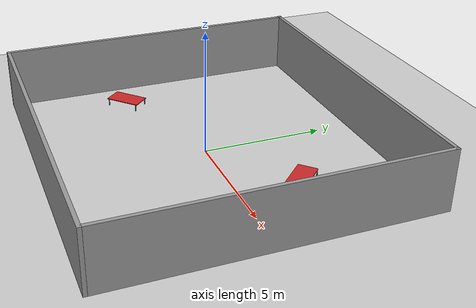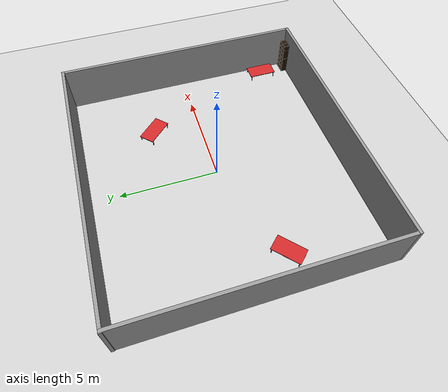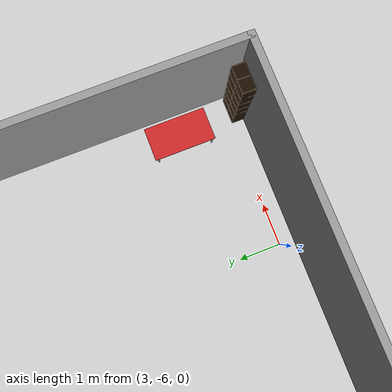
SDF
<sdf version="1.6">
 <world name="Own Room">
  <model name="ground_plane">
   <static>1</static>
   <link name="link">
    <collision name="collision">
     <geometry><plane><normal>0 0 1</normal><size>100 100</size></plane></geometry>
     <surface>
      <contact><collide_bitmask>65535</collide_bitmask></contact>
      <friction><ode><mu>100</mu><mu2>50</mu2></ode></friction>
     </surface>
    </collision>
    <visual name="visual">
     <cast_shadows>0</cast_shadows>
     <geometry><plane><normal>0 0 1</normal><size>100 100</size></plane></geometry>
     <material>
      <script><uri>file://media/materials/scripts/gazebo.material</uri><name>Gazebo/Grey</name></script>
     </material>
    </visual>
   </link>
  </model>
  <model name="Room">
   <pose>-0.022602 0.001659 0 0 -0 0</pose>
   <link name="Wall_1">
    <collision name="Wall_1_Collision">
     <geometry><box><size>13 0.15 2.5</size></box></geometry>
     <pose>0 0 1.25 0 -0 0</pose>
    </collision>
    <visual name="Wall_1_Visual">
     <pose>0 0 1.25 0 -0 0</pose>
     <geometry><box><size>13 0.15 2.5</size></box></geometry>
     <material>
      <script><uri>file://media/materials/scripts/gazebo.material</uri><name>Gazebo/Grey</name></script>
      <ambient>0.333333 0.341176 0.32549 1</ambient>
     </material>
     <meta><layer>0</layer></meta>
    </visual>
    <pose>-6.88982 -0 0 0 -0 1.5708</pose>
   </link>
   <link name="Wall_2">
    <collision name="Wall_2_Collision">
     <geometry><box><size>14 0.15 2.5</size></box></geometry>
     <pose>0 0 1.25 0 -0 0</pose>
    </collision>
    <visual name="Wall_2_Visual">
     <pose>0 0 1.25 0 -0 0</pose>
     <geometry><box><size>14 0.15 2.5</size></box></geometry>
     <material>
      <script><uri>file://media/materials/scripts/gazebo.material</uri><name>Gazebo/Grey</name></script>
      <ambient>0.333333 0.341176 0.32549 1</ambient>
     </material>
     <meta><layer>0</layer></meta>
    </visual>
    <pose>-0 6.425 0 0 -0 0</pose>
   </link>
   <link name="Wall_4">
    <collision name="Wall_4_Collision">
     <geometry><box><size>13 0.15 2.5</size></box></geometry>
     <pose>0 0 1.25 0 -0 0</pose>
    </collision>
    <visual name="Wall_4_Visual">
     <pose>0 0 1.25 0 -0 0</pose>
     <geometry><box><size>13 0.15 2.5</size></box></geometry>
     <material>
      <script><uri>file://media/materials/scripts/gazebo.material</uri><name>Gazebo/Grey</name></script>
      <ambient>0.333333 0.341176 0.32549 1</ambient>
     </material>
     <meta><layer>0</layer></meta>
    </visual>
    <pose>6.925 -0 0 0 -0 -1.5708</pose>
   </link>
   <link name="Wall_5">
    <collision name="Wall_5_Collision">
     <geometry><box><size>13.9648 0.15 2.5</size></box></geometry>
     <pose>0 0 1.25 0 -0 0</pose>
    </collision>
    <visual name="Wall_5_Visual">
     <pose>0 0 1.25 0 -0 0</pose>
     <geometry><box><size>13.9648 0.15 2.5</size></box></geometry>
     <material>
      <script><uri>file://media/materials/scripts/gazebo.material</uri><name>Gazebo/Grey</name></script>
      <ambient>0.333333 0.341176 0.32549 1</ambient>
     </material>
     <meta><layer>0</layer></meta>
    </visual>
    <pose>0.017589 -6.425 0 0 -0 3.14159</pose>
   </link>
   <static>1</static>
  </model>
  <model name="table_0">
   <link name="link">
    <inertial>
     <mass>1</mass>
     <inertia><ixx>1</ixx><ixy>0</ixy><ixz>0</ixz><iyy>1</iyy><iyz>0</iyz><izz>1</izz></inertia>
    </inertial>
    <visual name="front_right_leg">
     <pose>0.68 -0.38 0.15 0 -0 0</pose>
     <geometry><cylinder><radius>0.02</radius><length>0.3</length></cylinder></geometry>
     <material>
      <script><uri>file://media/materials/scripts/gazebo.material</uri><name>Gazebo/Grey</name></script>
      <shader type="pixel"><normal_map>__default__</normal_map></shader>
      <ambient>0.3 0.3 0.3 1</ambient>
      <diffuse>0.7 0.7 0.7 1</diffuse>
      <specular>0.01 0.01 0.01 1</specular>
      <emissive>0 0 0 1</emissive>
     </material>
    </visual>
    <visual name="back_left_leg">
     <pose>-0.68 0.38 0.15 0 -0 0</pose>
     <geometry><cylinder><radius>0.02</radius><length>0.3</length></cylinder></geometry>
     <material>
      <script><uri>file://media/materials/scripts/gazebo.material</uri><name>Gazebo/Grey</name></script>
      <shader type="pixel"><normal_map>__default__</normal_map></shader>
      <ambient>0.3 0.3 0.3 1</ambient>
      <diffuse>0.7 0.7 0.7 1</diffuse>
      <specular>0.01 0.01 0.01 1</specular>
      <emissive>0 0 0 1</emissive>
     </material>
    </visual>
    <visual name="front_left_leg">
     <pose>0.68 0.38 0.15 0 -0 0</pose>
     <geometry><cylinder><radius>0.02</radius><length>0.3</length></cylinder></geometry>
     <material>
      <script><uri>file://media/materials/scripts/gazebo.material</uri><name>Gazebo/Grey</name></script>
      <shader type="pixel"><normal_map>__default__</normal_map></shader>
      <ambient>0.3 0.3 0.3 1</ambient>
      <diffuse>0.7 0.7 0.7 1</diffuse>
      <specular>0.01 0.01 0.01 1</specular>
      <emissive>0 0 0 1</emissive>
     </material>
    </visual>
    <visual name="visual1">
     <pose>0 0 0.3 0 -0 0</pose>
     <geometry><box><size>1.5 0.8 0.03</size></box></geometry>
     <material>
      <script><uri>file://media/materials/scripts/gazebo.material</uri><name>Gazebo/Red</name></script>
      <shader type="vertex"><normal_map>__default__</normal_map></shader>
      <ambient>1 0 0 1</ambient>
      <diffuse>1 0 0 1</diffuse>
      <specular>0.2 0 0 1</specular>
      <emissive>0 0 0 1</emissive>
      <lighting>1</lighting>
     </material>
    </visual>
    <visual name="back_right_leg">
     <pose>-0.68 -0.38 0.15 0 -0 0</pose>
     <geometry><cylinder><radius>0.02</radius><length>0.3</length></cylinder></geometry>
     <material>
      <script><uri>file://media/materials/scripts/gazebo.material</uri><name>Gazebo/Grey</name></script>
      <shader type="pixel"><normal_map>__default__</normal_map></shader>
      <ambient>0.3 0.3 0.3 1</ambient>
      <diffuse>0.7 0.7 0.7 1</diffuse>
      <specular>0.01 0.01 0.01 1</specular>
      <emissive>0 0 0 1</emissive>
     </material>
    </visual>
    <collision name="front_left_leg">
     <pose>0.68 0.38 0.15 0 -0 0</pose>
     <geometry><cylinder><radius>0.02</radius><length>0.3</length></cylinder></geometry>
     <surface>
      <friction>
       <ode><mu>1</mu><mu2>1</mu2><fdir1>0 0 0</fdir1><slip1>0</slip1><slip2>0</slip2></ode>
       <torsional>
        <coefficient>1</coefficient>
        <patch_radius>0</patch_radius>
        <surface_radius>0</surface_radius>
        <use_patch_radius>1</use_patch_radius>
        <ode><slip>0</slip></ode>
       </torsional>
      </friction>
      <bounce><restitution_coefficient>0</restitution_coefficient><threshold>1e+06</threshold></bounce>
      <contact>
       <collide_without_contact>0</collide_without_contact>
       <collide_without_contact_bitmask>1</collide_without_contact_bitmask>
       <collide_bitmask>1</collide_bitmask>
       <ode>
        <soft_cfm>0</soft_cfm>
        <soft_erp>0.2</soft_erp>
        <kp>1e+13</kp>
        <kd>1</kd>
        <max_vel>0.01</max_vel>
        <min_depth>0</min_depth>
       </ode>
       <bullet>
        <split_impulse>1</split_impulse>
        <split_impulse_penetration_threshold>-0.01</split_impulse_penetration_threshold>
        <soft_cfm>0</soft_cfm>
        <soft_erp>0.2</soft_erp>
        <kp>1e+13</kp>
        <kd>1</kd>
       </bullet>
      </contact>
     </surface>
    </collision>
    <collision name="back_right_leg">
     <pose>-0.68 -0.38 0.15 0 -0 0</pose>
     <geometry><cylinder><radius>0.02</radius><length>0.3</length></cylinder></geometry>
     <surface>
      <friction>
       <ode><mu>1</mu><mu2>1</mu2><fdir1>0 0 0</fdir1><slip1>0</slip1><slip2>0</slip2></ode>
       <torsional>
        <coefficient>1</coefficient>
        <patch_radius>0</patch_radius>
        <surface_radius>0</surface_radius>
        <use_patch_radius>1</use_patch_radius>
        <ode><slip>0</slip></ode>
       </torsional>
      </friction>
      <bounce><restitution_coefficient>0</restitution_coefficient><threshold>1e+06</threshold></bounce>
      <contact>
       <collide_without_contact>0</collide_without_contact>
       <collide_without_contact_bitmask>1</collide_without_contact_bitmask>
       <collide_bitmask>1</collide_bitmask>
       <ode>
        <soft_cfm>0</soft_cfm>
        <soft_erp>0.2</soft_erp>
        <kp>1e+13</kp>
        <kd>1</kd>
        <max_vel>0.01</max_vel>
        <min_depth>0</min_depth>
       </ode>
       <bullet>
        <split_impulse>1</split_impulse>
        <split_impulse_penetration_threshold>-0.01</split_impulse_penetration_threshold>
        <soft_cfm>0</soft_cfm>
        <soft_erp>0.2</soft_erp>
        <kp>1e+13</kp>
        <kd>1</kd>
       </bullet>
      </contact>
     </surface>
    </collision>
    <collision name="back_left_leg">
     <pose>-0.68 0.38 0.15 0 -0 0</pose>
     <geometry><cylinder><radius>0.02</radius><length>0.3</length></cylinder></geometry>
     <surface>
      <friction>
       <ode><mu>1</mu><mu2>1</mu2><fdir1>0 0 0</fdir1><slip1>0</slip1><slip2>0</slip2></ode>
       <torsional>
        <coefficient>1</coefficient>
        <patch_radius>0</patch_radius>
        <surface_radius>0</surface_radius>
        <use_patch_radius>1</use_patch_radius>
        <ode><slip>0</slip></ode>
       </torsional>
      </friction>
      <bounce><restitution_coefficient>0</restitution_coefficient><threshold>1e+06</threshold></bounce>
      <contact>
       <collide_without_contact>0</collide_without_contact>
       <collide_without_contact_bitmask>1</collide_without_contact_bitmask>
       <collide_bitmask>1</collide_bitmask>
       <ode>
        <soft_cfm>0</soft_cfm>
        <soft_erp>0.2</soft_erp>
        <kp>1e+13</kp>
        <kd>1</kd>
        <max_vel>0.01</max_vel>
        <min_depth>0</min_depth>
       </ode>
       <bullet>
        <split_impulse>1</split_impulse>
        <split_impulse_penetration_threshold>-0.01</split_impulse_penetration_threshold>
        <soft_cfm>0</soft_cfm>
        <soft_erp>0.2</soft_erp>
        <kp>1e+13</kp>
        <kd>1</kd>
       </bullet>
      </contact>
     </surface>
    </collision>
    <collision name="surface">
     <pose>0 0 0.3 0 -0 0</pose>
     <geometry><box><size>1.5 0.8 0.03</size></box></geometry>
     <surface>
      <friction>
       <ode><mu>0.6</mu><mu2>0.6</mu2><fdir1>0 0 0</fdir1><slip1>0</slip1><slip2>0</slip2></ode>
       <torsional>
        <coefficient>1</coefficient>
        <patch_radius>0</patch_radius>
        <surface_radius>0</surface_radius>
        <use_patch_radius>1</use_patch_radius>
        <ode><slip>0</slip></ode>
       </torsional>
      </friction>
      <bounce><restitution_coefficient>0</restitution_coefficient><threshold>1e+06</threshold></bounce>
      <contact>
       <collide_without_contact>0</collide_without_contact>
       <collide_without_contact_bitmask>1</collide_without_contact_bitmask>
       <collide_bitmask>1</collide_bitmask>
       <ode>
        <soft_cfm>0</soft_cfm>
        <soft_erp>0.2</soft_erp>
        <kp>1e+13</kp>
        <kd>1</kd>
        <max_vel>0.01</max_vel>
        <min_depth>0</min_depth>
       </ode>
       <bullet>
        <split_impulse>1</split_impulse>
        <split_impulse_penetration_threshold>-0.01</split_impulse_penetration_threshold>
        <soft_cfm>0</soft_cfm>
        <soft_erp>0.2</soft_erp>
        <kp>1e+13</kp>
        <kd>1</kd>
       </bullet>
      </contact>
     </surface>
    </collision>
    <collision name="front_right_leg">
     <pose>0.68 -0.38 0.15 0 -0 0</pose>
     <geometry><cylinder><radius>0.02</radius><length>0.3</length></cylinder></geometry>
     <surface>
      <friction>
       <ode><mu>1</mu><mu2>1</mu2><fdir1>0 0 0</fdir1><slip1>0</slip1><slip2>0</slip2></ode>
       <torsional>
        <coefficient>1</coefficient>
        <patch_radius>0</patch_radius>
        <surface_radius>0</surface_radius>
        <use_patch_radius>1</use_patch_radius>
        <ode><slip>0</slip></ode>
       </torsional>
      </friction>
      <bounce><restitution_coefficient>0</restitution_coefficient><threshold>1e+06</threshold></bounce>
      <contact>
       <collide_without_contact>0</collide_without_contact>
       <collide_without_contact_bitmask>1</collide_without_contact_bitmask>
       <collide_bitmask>1</collide_bitmask>
       <ode>
        <soft_cfm>0</soft_cfm>
        <soft_erp>0.2</soft_erp>
        <kp>1e+13</kp>
        <kd>1</kd>
        <max_vel>0.01</max_vel>
        <min_depth>0</min_depth>
       </ode>
       <bullet>
        <split_impulse>1</split_impulse>
        <split_impulse_penetration_threshold>-0.01</split_impulse_penetration_threshold>
        <soft_cfm>0</soft_cfm>
        <soft_erp>0.2</soft_erp>
        <kp>1e+13</kp>
        <kd>1</kd>
       </bullet>
      </contact>
     </surface>
    </collision>
   </link>
   <static>1</static>
   <pose>6.26711 -4.72705 0 0 0 -1.56938</pose>
  </model>
  <model name="table_1">
   <link name="link">
    <inertial>
     <mass>1</mass>
     <inertia><ixx>1</ixx><ixy>0</ixy><ixz>0</ixz><iyy>1</iyy><iyz>0</iyz><izz>1</izz></inertia>
    </inertial>
    <visual name="front_right_leg">
     <pose>0.68 -0.38 0.15 0 -0 0</pose>
     <geometry><cylinder><radius>0.02</radius><length>0.3</length></cylinder></geometry>
     <material>
      <script><uri>file://media/materials/scripts/gazebo.material</uri><name>Gazebo/Grey</name></script>
      <shader type="pixel"><normal_map>__default__</normal_map></shader>
      <ambient>0.3 0.3 0.3 1</ambient>
      <diffuse>0.7 0.7 0.7 1</diffuse>
      <specular>0.01 0.01 0.01 1</specular>
      <emissive>0 0 0 1</emissive>
     </material>
    </visual>
    <visual name="back_left_leg">
     <pose>-0.68 0.38 0.15 0 -0 0</pose>
     <geometry><cylinder><radius>0.02</radius><length>0.3</length></cylinder></geometry>
     <material>
      <script><uri>file://media/materials/scripts/gazebo.material</uri><name>Gazebo/Grey</name></script>
      <shader type="pixel"><normal_map>__default__</normal_map></shader>
      <ambient>0.3 0.3 0.3 1</ambient>
      <diffuse>0.7 0.7 0.7 1</diffuse>
      <specular>0.01 0.01 0.01 1</specular>
      <emissive>0 0 0 1</emissive>
     </material>
    </visual>
    <visual name="front_left_leg">
     <pose>0.68 0.38 0.15 0 -0 0</pose>
     <geometry><cylinder><radius>0.02</radius><length>0.3</length></cylinder></geometry>
     <material>
      <script><uri>file://media/materials/scripts/gazebo.material</uri><name>Gazebo/Grey</name></script>
      <shader type="pixel"><normal_map>__default__</normal_map></shader>
      <ambient>0.3 0.3 0.3 1</ambient>
      <diffuse>0.7 0.7 0.7 1</diffuse>
      <specular>0.01 0.01 0.01 1</specular>
      <emissive>0 0 0 1</emissive>
     </material>
    </visual>
    <visual name="visual1">
     <pose>0 0 0.3 0 -0 0</pose>
     <geometry><box><size>1.5 0.8 0.03</size></box></geometry>
     <material>
      <script><uri>file://media/materials/scripts/gazebo.material</uri><name>Gazebo/Red</name></script>
      <shader type="vertex"><normal_map>__default__</normal_map></shader>
      <ambient>1 0 0 1</ambient>
      <diffuse>1 0 0 1</diffuse>
      <specular>0.2 0 0 1</specular>
      <emissive>0 0 0 1</emissive>
      <lighting>1</lighting>
     </material>
    </visual>
    <visual name="back_right_leg">
     <pose>-0.68 -0.38 0.15 0 -0 0</pose>
     <geometry><cylinder><radius>0.02</radius><length>0.3</length></cylinder></geometry>
     <material>
      <script><uri>file://media/materials/scripts/gazebo.material</uri><name>Gazebo/Grey</name></script>
      <shader type="pixel"><normal_map>__default__</normal_map></shader>
      <ambient>0.3 0.3 0.3 1</ambient>
      <diffuse>0.7 0.7 0.7 1</diffuse>
      <specular>0.01 0.01 0.01 1</specular>
      <emissive>0 0 0 1</emissive>
     </material>
    </visual>
    <collision name="front_left_leg">
     <pose>0.68 0.38 0.15 0 -0 0</pose>
     <geometry><cylinder><radius>0.02</radius><length>0.3</length></cylinder></geometry>
     <surface>
      <friction>
       <ode><mu>1</mu><mu2>1</mu2><fdir1>0 0 0</fdir1><slip1>0</slip1><slip2>0</slip2></ode>
       <torsional>
        <coefficient>1</coefficient>
        <patch_radius>0</patch_radius>
        <surface_radius>0</surface_radius>
        <use_patch_radius>1</use_patch_radius>
        <ode><slip>0</slip></ode>
       </torsional>
      </friction>
      <bounce><restitution_coefficient>0</restitution_coefficient><threshold>1e+06</threshold></bounce>
      <contact>
       <collide_without_contact>0</collide_without_contact>
       <collide_without_contact_bitmask>1</collide_without_contact_bitmask>
       <collide_bitmask>1</collide_bitmask>
       <ode>
        <soft_cfm>0</soft_cfm>
        <soft_erp>0.2</soft_erp>
        <kp>1e+13</kp>
        <kd>1</kd>
        <max_vel>0.01</max_vel>
        <min_depth>0</min_depth>
       </ode>
       <bullet>
        <split_impulse>1</split_impulse>
        <split_impulse_penetration_threshold>-0.01</split_impulse_penetration_threshold>
        <soft_cfm>0</soft_cfm>
        <soft_erp>0.2</soft_erp>
        <kp>1e+13</kp>
        <kd>1</kd>
       </bullet>
      </contact>
     </surface>
    </collision>
    <collision name="back_right_leg">
     <pose>-0.68 -0.38 0.15 0 -0 0</pose>
     <geometry><cylinder><radius>0.02</radius><length>0.3</length></cylinder></geometry>
     <surface>
      <friction>
       <ode><mu>1</mu><mu2>1</mu2><fdir1>0 0 0</fdir1><slip1>0</slip1><slip2>0</slip2></ode>
       <torsional>
        <coefficient>1</coefficient>
        <patch_radius>0</patch_radius>
        <surface_radius>0</surface_radius>
        <use_patch_radius>1</use_patch_radius>
        <ode><slip>0</slip></ode>
       </torsional>
      </friction>
      <bounce><restitution_coefficient>0</restitution_coefficient><threshold>1e+06</threshold></bounce>
      <contact>
       <collide_without_contact>0</collide_without_contact>
       <collide_without_contact_bitmask>1</collide_without_contact_bitmask>
       <collide_bitmask>1</collide_bitmask>
       <ode>
        <soft_cfm>0</soft_cfm>
        <soft_erp>0.2</soft_erp>
        <kp>1e+13</kp>
        <kd>1</kd>
        <max_vel>0.01</max_vel>
        <min_depth>0</min_depth>
       </ode>
       <bullet>
        <split_impulse>1</split_impulse>
        <split_impulse_penetration_threshold>-0.01</split_impulse_penetration_threshold>
        <soft_cfm>0</soft_cfm>
        <soft_erp>0.2</soft_erp>
        <kp>1e+13</kp>
        <kd>1</kd>
       </bullet>
      </contact>
     </surface>
    </collision>
    <collision name="back_left_leg">
     <pose>-0.68 0.38 0.15 0 -0 0</pose>
     <geometry><cylinder><radius>0.02</radius><length>0.3</length></cylinder></geometry>
     <surface>
      <friction>
       <ode><mu>1</mu><mu2>1</mu2><fdir1>0 0 0</fdir1><slip1>0</slip1><slip2>0</slip2></ode>
       <torsional>
        <coefficient>1</coefficient>
        <patch_radius>0</patch_radius>
        <surface_radius>0</surface_radius>
        <use_patch_radius>1</use_patch_radius>
        <ode><slip>0</slip></ode>
       </torsional>
      </friction>
      <bounce><restitution_coefficient>0</restitution_coefficient><threshold>1e+06</threshold></bounce>
      <contact>
       <collide_without_contact>0</collide_without_contact>
       <collide_without_contact_bitmask>1</collide_without_contact_bitmask>
       <collide_bitmask>1</collide_bitmask>
       <ode>
        <soft_cfm>0</soft_cfm>
        <soft_erp>0.2</soft_erp>
        <kp>1e+13</kp>
        <kd>1</kd>
        <max_vel>0.01</max_vel>
        <min_depth>0</min_depth>
       </ode>
       <bullet>
        <split_impulse>1</split_impulse>
        <split_impulse_penetration_threshold>-0.01</split_impulse_penetration_threshold>
        <soft_cfm>0</soft_cfm>
        <soft_erp>0.2</soft_erp>
        <kp>1e+13</kp>
        <kd>1</kd>
       </bullet>
      </contact>
     </surface>
    </collision>
    <collision name="surface">
     <pose>0 0 0.3 0 -0 0</pose>
     <geometry><box><size>1.5 0.8 0.03</size></box></geometry>
     <surface>
      <friction>
       <ode><mu>0.6</mu><mu2>0.6</mu2><fdir1>0 0 0</fdir1><slip1>0</slip1><slip2>0</slip2></ode>
       <torsional>
        <coefficient>1</coefficient>
        <patch_radius>0</patch_radius>
        <surface_radius>0</surface_radius>
        <use_patch_radius>1</use_patch_radius>
        <ode><slip>0</slip></ode>
       </torsional>
      </friction>
      <bounce><restitution_coefficient>0</restitution_coefficient><threshold>1e+06</threshold></bounce>
      <contact>
       <collide_without_contact>0</collide_without_contact>
       <collide_without_contact_bitmask>1</collide_without_contact_bitmask>
       <collide_bitmask>1</collide_bitmask>
       <ode>
        <soft_cfm>0</soft_cfm>
        <soft_erp>0.2</soft_erp>
        <kp>1e+13</kp>
        <kd>1</kd>
        <max_vel>0.01</max_vel>
        <min_depth>0</min_depth>
       </ode>
       <bullet>
        <split_impulse>1</split_impulse>
        <split_impulse_penetration_threshold>-0.01</split_impulse_penetration_threshold>
        <soft_cfm>0</soft_cfm>
        <soft_erp>0.2</soft_erp>
        <kp>1e+13</kp>
        <kd>1</kd>
       </bullet>
      </contact>
     </surface>
    </collision>
    <collision name="front_right_leg">
     <pose>0.68 -0.38 0.15 0 -0 0</pose>
     <geometry><cylinder><radius>0.02</radius><length>0.3</length></cylinder></geometry>
     <surface>
      <friction>
       <ode><mu>1</mu><mu2>1</mu2><fdir1>0 0 0</fdir1><slip1>0</slip1><slip2>0</slip2></ode>
       <torsional>
        <coefficient>1</coefficient>
        <patch_radius>0</patch_radius>
        <surface_radius>0</surface_radius>
        <use_patch_radius>1</use_patch_radius>
        <ode><slip>0</slip></ode>
       </torsional>
      </friction>
      <bounce><restitution_coefficient>0</restitution_coefficient><threshold>1e+06</threshold></bounce>
      <contact>
       <collide_without_contact>0</collide_without_contact>
       <collide_without_contact_bitmask>1</collide_without_contact_bitmask>
       <collide_bitmask>1</collide_bitmask>
       <ode>
        <soft_cfm>0</soft_cfm>
        <soft_erp>0.2</soft_erp>
        <kp>1e+13</kp>
        <kd>1</kd>
        <max_vel>0.01</max_vel>
        <min_depth>0</min_depth>
       </ode>
       <bullet>
        <split_impulse>1</split_impulse>
        <split_impulse_penetration_threshold>-0.01</split_impulse_penetration_threshold>
        <soft_cfm>0</soft_cfm>
        <soft_erp>0.2</soft_erp>
        <kp>1e+13</kp>
        <kd>1</kd>
       </bullet>
      </contact>
     </surface>
    </collision>
   </link>
   <static>1</static>
   <pose>3.47543 2.47814 0 0 0 -0.802588</pose>
  </model>
  <model name="table_2">
   <link name="link">
    <inertial>
     <mass>1</mass>
     <inertia><ixx>1</ixx><ixy>0</ixy><ixz>0</ixz><iyy>1</iyy><iyz>0</iyz><izz>1</izz></inertia>
    </inertial>
    <visual name="front_right_leg">
     <pose>0.68 -0.38 0.15 0 -0 0</pose>
     <geometry><cylinder><radius>0.02</radius><length>0.3</length></cylinder></geometry>
     <material>
      <script><uri>file://media/materials/scripts/gazebo.material</uri><name>Gazebo/Grey</name></script>
      <shader type="pixel"><normal_map>__default__</normal_map></shader>
      <ambient>0.3 0.3 0.3 1</ambient>
      <diffuse>0.7 0.7 0.7 1</diffuse>
      <specular>0.01 0.01 0.01 1</specular>
      <emissive>0 0 0 1</emissive>
     </material>
    </visual>
    <visual name="back_left_leg">
     <pose>-0.68 0.38 0.15 0 -0 0</pose>
     <geometry><cylinder><radius>0.02</radius><length>0.3</length></cylinder></geometry>
     <material>
      <script><uri>file://media/materials/scripts/gazebo.material</uri><name>Gazebo/Grey</name></script>
      <shader type="pixel"><normal_map>__default__</normal_map></shader>
      <ambient>0.3 0.3 0.3 1</ambient>
      <diffuse>0.7 0.7 0.7 1</diffuse>
      <specular>0.01 0.01 0.01 1</specular>
      <emissive>0 0 0 1</emissive>
     </material>
    </visual>
    <visual name="front_left_leg">
     <pose>0.68 0.38 0.15 0 -0 0</pose>
     <geometry><cylinder><radius>0.02</radius><length>0.3</length></cylinder></geometry>
     <material>
      <script><uri>file://media/materials/scripts/gazebo.material</uri><name>Gazebo/Grey</name></script>
      <shader type="pixel"><normal_map>__default__</normal_map></shader>
      <ambient>0.3 0.3 0.3 1</ambient>
      <diffuse>0.7 0.7 0.7 1</diffuse>
      <specular>0.01 0.01 0.01 1</specular>
      <emissive>0 0 0 1</emissive>
     </material>
    </visual>
    <visual name="visual1">
     <pose>0 0 0.3 0 -0 0</pose>
     <geometry><box><size>1.5 0.8 0.03</size></box></geometry>
     <material>
      <script><uri>file://media/materials/scripts/gazebo.material</uri><name>Gazebo/Red</name></script>
      <shader type="vertex"><normal_map>__default__</normal_map></shader>
      <ambient>1 0 0 1</ambient>
      <diffuse>1 0 0 1</diffuse>
      <specular>0.2 0 0 1</specular>
      <emissive>0 0 0 1</emissive>
      <lighting>1</lighting>
     </material>
    </visual>
    <visual name="back_right_leg">
     <pose>-0.68 -0.38 0.15 0 -0 0</pose>
     <geometry><cylinder><radius>0.02</radius><length>0.3</length></cylinder></geometry>
     <material>
      <script><uri>file://media/materials/scripts/gazebo.material</uri><name>Gazebo/Grey</name></script>
      <shader type="pixel"><normal_map>__default__</normal_map></shader>
      <ambient>0.3 0.3 0.3 1</ambient>
      <diffuse>0.7 0.7 0.7 1</diffuse>
      <specular>0.01 0.01 0.01 1</specular>
      <emissive>0 0 0 1</emissive>
     </material>
    </visual>
    <collision name="front_left_leg">
     <pose>0.68 0.38 0.15 0 -0 0</pose>
     <geometry><cylinder><radius>0.02</radius><length>0.3</length></cylinder></geometry>
     <surface>
      <friction>
       <ode><mu>1</mu><mu2>1</mu2><fdir1>0 0 0</fdir1><slip1>0</slip1><slip2>0</slip2></ode>
       <torsional>
        <coefficient>1</coefficient>
        <patch_radius>0</patch_radius>
        <surface_radius>0</surface_radius>
        <use_patch_radius>1</use_patch_radius>
        <ode><slip>0</slip></ode>
       </torsional>
      </friction>
      <bounce><restitution_coefficient>0</restitution_coefficient><threshold>1e+06</threshold></bounce>
      <contact>
       <collide_without_contact>0</collide_without_contact>
       <collide_without_contact_bitmask>1</collide_without_contact_bitmask>
       <collide_bitmask>1</collide_bitmask>
       <ode>
        <soft_cfm>0</soft_cfm>
        <soft_erp>0.2</soft_erp>
        <kp>1e+13</kp>
        <kd>1</kd>
        <max_vel>0.01</max_vel>
        <min_depth>0</min_depth>
       </ode>
       <bullet>
        <split_impulse>1</split_impulse>
        <split_impulse_penetration_threshold>-0.01</split_impulse_penetration_threshold>
        <soft_cfm>0</soft_cfm>
        <soft_erp>0.2</soft_erp>
        <kp>1e+13</kp>
        <kd>1</kd>
       </bullet>
      </contact>
     </surface>
    </collision>
    <collision name="back_right_leg">
     <pose>-0.68 -0.38 0.15 0 -0 0</pose>
     <geometry><cylinder><radius>0.02</radius><length>0.3</length></cylinder></geometry>
     <surface>
      <friction>
       <ode><mu>1</mu><mu2>1</mu2><fdir1>0 0 0</fdir1><slip1>0</slip1><slip2>0</slip2></ode>
       <torsional>
        <coefficient>1</coefficient>
        <patch_radius>0</patch_radius>
        <surface_radius>0</surface_radius>
        <use_patch_radius>1</use_patch_radius>
        <ode><slip>0</slip></ode>
       </torsional>
      </friction>
      <bounce><restitution_coefficient>0</restitution_coefficient><threshold>1e+06</threshold></bounce>
      <contact>
       <collide_without_contact>0</collide_without_contact>
       <collide_without_contact_bitmask>1</collide_without_contact_bitmask>
       <collide_bitmask>1</collide_bitmask>
       <ode>
        <soft_cfm>0</soft_cfm>
        <soft_erp>0.2</soft_erp>
        <kp>1e+13</kp>
        <kd>1</kd>
        <max_vel>0.01</max_vel>
        <min_depth>0</min_depth>
       </ode>
       <bullet>
        <split_impulse>1</split_impulse>
        <split_impulse_penetration_threshold>-0.01</split_impulse_penetration_threshold>
        <soft_cfm>0</soft_cfm>
        <soft_erp>0.2</soft_erp>
        <kp>1e+13</kp>
        <kd>1</kd>
       </bullet>
      </contact>
     </surface>
    </collision>
    <collision name="back_left_leg">
     <pose>-0.68 0.38 0.15 0 -0 0</pose>
     <geometry><cylinder><radius>0.02</radius><length>0.3</length></cylinder></geometry>
     <surface>
      <friction>
       <ode><mu>1</mu><mu2>1</mu2><fdir1>0 0 0</fdir1><slip1>0</slip1><slip2>0</slip2></ode>
       <torsional>
        <coefficient>1</coefficient>
        <patch_radius>0</patch_radius>
        <surface_radius>0</surface_radius>
        <use_patch_radius>1</use_patch_radius>
        <ode><slip>0</slip></ode>
       </torsional>
      </friction>
      <bounce><restitution_coefficient>0</restitution_coefficient><threshold>1e+06</threshold></bounce>
      <contact>
       <collide_without_contact>0</collide_without_contact>
       <collide_without_contact_bitmask>1</collide_without_contact_bitmask>
       <collide_bitmask>1</collide_bitmask>
       <ode>
        <soft_cfm>0</soft_cfm>
        <soft_erp>0.2</soft_erp>
        <kp>1e+13</kp>
        <kd>1</kd>
        <max_vel>0.01</max_vel>
        <min_depth>0</min_depth>
       </ode>
       <bullet>
        <split_impulse>1</split_impulse>
        <split_impulse_penetration_threshold>-0.01</split_impulse_penetration_threshold>
        <soft_cfm>0</soft_cfm>
        <soft_erp>0.2</soft_erp>
        <kp>1e+13</kp>
        <kd>1</kd>
       </bullet>
      </contact>
     </surface>
    </collision>
    <collision name="surface">
     <pose>0 0 0.3 0 -0 0</pose>
     <geometry><box><size>1.5 0.8 0.03</size></box></geometry>
     <surface>
      <friction>
       <ode><mu>0.6</mu><mu2>0.6</mu2><fdir1>0 0 0</fdir1><slip1>0</slip1><slip2>0</slip2></ode>
       <torsional>
        <coefficient>1</coefficient>
        <patch_radius>0</patch_radius>
        <surface_radius>0</surface_radius>
        <use_patch_radius>1</use_patch_radius>
        <ode><slip>0</slip></ode>
       </torsional>
      </friction>
      <bounce><restitution_coefficient>0</restitution_coefficient><threshold>1e+06</threshold></bounce>
      <contact>
       <collide_without_contact>0</collide_without_contact>
       <collide_without_contact_bitmask>1</collide_without_contact_bitmask>
       <collide_bitmask>1</collide_bitmask>
       <ode>
        <soft_cfm>0</soft_cfm>
        <soft_erp>0.2</soft_erp>
        <kp>1e+13</kp>
        <kd>1</kd>
        <max_vel>0.01</max_vel>
        <min_depth>0</min_depth>
       </ode>
       <bullet>
        <split_impulse>1</split_impulse>
        <split_impulse_penetration_threshold>-0.01</split_impulse_penetration_threshold>
        <soft_cfm>0</soft_cfm>
        <soft_erp>0.2</soft_erp>
        <kp>1e+13</kp>
        <kd>1</kd>
       </bullet>
      </contact>
     </surface>
    </collision>
    <collision name="front_right_leg">
     <pose>0.68 -0.38 0.15 0 -0 0</pose>
     <geometry><cylinder><radius>0.02</radius><length>0.3</length></cylinder></geometry>
     <surface>
      <friction>
       <ode><mu>1</mu><mu2>1</mu2><fdir1>0 0 0</fdir1><slip1>0</slip1><slip2>0</slip2></ode>
       <torsional>
        <coefficient>1</coefficient>
        <patch_radius>0</patch_radius>
        <surface_radius>0</surface_radius>
        <use_patch_radius>1</use_patch_radius>
        <ode><slip>0</slip></ode>
       </torsional>
      </friction>
      <bounce><restitution_coefficient>0</restitution_coefficient><threshold>1e+06</threshold></bounce>
      <contact>
       <collide_without_contact>0</collide_without_contact>
       <collide_without_contact_bitmask>1</collide_without_contact_bitmask>
       <collide_bitmask>1</collide_bitmask>
       <ode>
        <soft_cfm>0</soft_cfm>
        <soft_erp>0.2</soft_erp>
        <kp>1e+13</kp>
        <kd>1</kd>
        <max_vel>0.01</max_vel>
        <min_depth>0</min_depth>
       </ode>
       <bullet>
        <split_impulse>1</split_impulse>
        <split_impulse_penetration_threshold>-0.01</split_impulse_penetration_threshold>
        <soft_cfm>0</soft_cfm>
        <soft_erp>0.2</soft_erp>
        <kp>1e+13</kp>
        <kd>1</kd>
       </bullet>
      </contact>
     </surface>
    </collision>
   </link>
   <static>1</static>
   <pose>-5.17868 -1.76031 0 0 -0 0.74411</pose>
  </model>
  <model name="6_Cube_StorageE">
   <link name="Wall_0">
    <pose>0 0 0.01 0 -0 0</pose>
    <inertial>
     <mass>1.6201</mass>
     <inertia><ixx>0.0119</ixx><iyy>0.0631</iyy><izz>0.0513</izz><ixy>0</ixy><ixz>0</ixz><iyz>0</iyz></inertia>
    </inertial>
    <collision name="Wall_0_Collision"><geometry><box><size>0.616 0.296 0.02</size></box></geometry></collision>
    <visual name="Wall_0_Visual">
     <geometry><box><size>0.616 0.296 0.02</size></box></geometry>
     <material>
      <script><uri>file://media/materials/scripts/gazebo.material</uri><name>Gazebo/Grey</name></script>
      <ambient>0.105882 0.0509804 0 1</ambient>
     </material>
    </visual>
   </link>
   <joint name="0_2" type="fixed">
    <pose>-0.308 0 0 0 -0 0</pose>
    <parent>Wall_2</parent>
    <child>Wall_0</child>
    <axis>
     <xyz>1 0 0</xyz>
     <use_parent_model_frame>0</use_parent_model_frame>
     <limit><lower>-1e+16</lower><upper>1e+16</upper></limit>
    </axis>
   </joint>
   <joint name="0_12" type="fixed">
    <parent>Wall_12</parent>
    <child>Wall_0</child>
    <axis>
     <xyz>0 0 1</xyz>
     <use_parent_model_frame>0</use_parent_model_frame>
     <limit><lower>-1e+16</lower><upper>1e+16</upper></limit>
    </axis>
   </joint>
   <joint name="0_4" type="fixed">
    <pose>0.308 0 0 0 -0 0</pose>
    <parent>Wall_4</parent>
    <child>Wall_0</child>
    <axis>
     <xyz>1 0 0</xyz>
     <use_parent_model_frame>0</use_parent_model_frame>
     <limit><lower>-1e+16</lower><upper>1e+16</upper></limit>
    </axis>
   </joint>
   <link name="Wall_10">
    <pose>0 0 0.61 0 -0 0</pose>
    <inertial>
     <mass>1.6201</mass>
     <inertia><ixx>0.0119</ixx><iyy>0.0631</iyy><izz>0.0513</izz><ixy>0</ixy><ixz>0</ixz><iyz>0</iyz></inertia>
    </inertial>
    <collision name="Wall_10_Collision"><geometry><box><size>0.616 0.296 0.02</size></box></geometry></collision>
    <visual name="Wall_10_Visual">
     <geometry><box><size>0.616 0.296 0.02</size></box></geometry>
     <material>
      <script><uri>file://media/materials/scripts/gazebo.material</uri><name>Gazebo/Grey</name></script>
      <ambient>0.105882 0.0509804 0 1</ambient>
     </material>
    </visual>
   </link>
   <joint name="10_2" type="fixed">
    <pose>-0.308 0 0 0 -0 0</pose>
    <parent>Wall_2</parent>
    <child>Wall_10</child>
    <axis>
     <xyz>1 0 0</xyz>
     <use_parent_model_frame>0</use_parent_model_frame>
     <limit><lower>-1e+16</lower><upper>1e+16</upper></limit>
    </axis>
   </joint>
   <joint name="10_12" type="fixed">
    <parent>Wall_12</parent>
    <child>Wall_10</child>
    <axis>
     <xyz>0 0 1</xyz>
     <use_parent_model_frame>0</use_parent_model_frame>
     <limit><lower>-1e+16</lower><upper>1e+16</upper></limit>
    </axis>
   </joint>
   <joint name="10_4" type="fixed">
    <pose>0.308 0 0 0 -0 0</pose>
    <parent>Wall_4</parent>
    <child>Wall_10</child>
    <axis>
     <xyz>1 0 0</xyz>
     <use_parent_model_frame>0</use_parent_model_frame>
     <limit><lower>-1e+16</lower><upper>1e+16</upper></limit>
    </axis>
   </joint>
   <link name="Wall_12">
    <pose>0 0 0.4575 0 -0 0</pose>
    <inertial>
     <mass>2.4065</mass>
     <inertia><ixx>0.0177</ixx><iyy>0.1855</iyy><izz>0.168</izz><ixy>0</ixy><ixz>0</ixz><iyz>0</iyz></inertia>
    </inertial>
    <collision name="Wall_12_Collision"><geometry><box><size>0.02 0.296 0.915</size></box></geometry></collision>
    <visual name="Wall_12_Visual">
     <geometry><box><size>0.02 0.296 0.915</size></box></geometry>
     <material>
      <script><uri>file://media/materials/scripts/gazebo.material</uri><name>Gazebo/Grey</name></script>
      <ambient>0.105882 0.0509804 0 1</ambient>
     </material>
    </visual>
   </link>
   <link name="Wall_2">
    <pose>-0.298 0 0.4575 0 -0 0</pose>
    <inertial>
     <mass>2.4065</mass>
     <inertia><ixx>0.0177</ixx><iyy>0.1855</iyy><izz>0.168</izz><ixy>0</ixy><ixz>0</ixz><iyz>0</iyz></inertia>
    </inertial>
    <collision name="Wall_2_Collision"><geometry><box><size>0.02 0.296 0.915</size></box></geometry></collision>
    <visual name="Wall_2_Visual">
     <geometry><box><size>0.02 0.296 0.915</size></box></geometry>
     <material>
      <script><uri>file://media/materials/scripts/gazebo.material</uri><name>Gazebo/Grey</name></script>
      <ambient>0.105882 0.0509804 0 1</ambient>
     </material>
    </visual>
   </link>
   <link name="Wall_4">
    <pose>0.298 0 0.4575 0 -0 0</pose>
    <inertial>
     <mass>2.4065</mass>
     <inertia><ixx>0.0177</ixx><iyy>0.1855</iyy><izz>0.168</izz><ixy>0</ixy><ixz>0</ixz><iyz>0</iyz></inertia>
    </inertial>
    <collision name="Wall_4_Collision"><geometry><box><size>0.02 0.296 0.915</size></box></geometry></collision>
    <visual name="Wall_4_Visual">
     <geometry><box><size>0.02 0.296 0.915</size></box></geometry>
     <material>
      <script><uri>file://media/materials/scripts/gazebo.material</uri><name>Gazebo/Grey</name></script>
      <ambient>0.105882 0.0509804 0 1</ambient>
     </material>
    </visual>
   </link>
   <link name="Wall_6">
    <pose>0 0 0.905 0 -0 0</pose>
    <inertial>
     <mass>1.6201</mass>
     <inertia><ixx>0.0119</ixx><iyy>0.0631</iyy><izz>0.0513</izz><ixy>0</ixy><ixz>0</ixz><iyz>0</iyz></inertia>
    </inertial>
    <collision name="Wall_6_Collision"><geometry><box><size>0.616 0.296 0.02</size></box></geometry></collision>
    <visual name="Wall_6_Visual">
     <geometry><box><size>0.616 0.296 0.02</size></box></geometry>
     <material>
      <script><uri>file://media/materials/scripts/gazebo.material</uri><name>Gazebo/Grey</name></script>
      <ambient>0.105882 0.0509804 0 1</ambient>
     </material>
    </visual>
   </link>
   <joint name="6_2" type="fixed">
    <pose>-0.308 0 0 0 -0 0</pose>
    <parent>Wall_2</parent>
    <child>Wall_6</child>
    <axis>
     <xyz>2 0 0</xyz>
     <use_parent_model_frame>0</use_parent_model_frame>
     <limit><lower>-1e+16</lower><upper>1e+16</upper></limit>
    </axis>
   </joint>
   <joint name="6_12" type="fixed">
    <parent>Wall_12</parent>
    <child>Wall_6</child>
    <axis>
     <xyz>0 0 1</xyz>
     <use_parent_model_frame>0</use_parent_model_frame>
     <limit><lower>-1e+16</lower><upper>1e+16</upper></limit>
    </axis>
   </joint>
   <joint name="6_4" type="fixed">
    <pose>0.308 0 0 0 -0 0</pose>
    <parent>Wall_4</parent>
    <child>Wall_6</child>
    <axis>
     <xyz>1 0 0</xyz>
     <use_parent_model_frame>0</use_parent_model_frame>
     <limit><lower>-1e+16</lower><upper>1e+16</upper></limit>
    </axis>
   </joint>
   <link name="Wall_8">
    <pose>0 0 0.305 0 -0 0</pose>
    <inertial>
     <mass>1.6201</mass>
     <inertia><ixx>0.0119</ixx><iyy>0.0631</iyy><izz>0.0513</izz><ixy>0</ixy><ixz>0</ixz><iyz>0</iyz></inertia>
    </inertial>
    <collision name="Wall_8_Collision"><geometry><box><size>0.616 0.296 0.02</size></box></geometry></collision>
    <visual name="Wall_8_Visual">
     <geometry><box><size>0.616 0.296 0.02</size></box></geometry>
     <material>
      <script><uri>file://media/materials/scripts/gazebo.material</uri><name>Gazebo/Grey</name></script>
      <ambient>0.105882 0.0509804 0 1</ambient>
     </material>
    </visual>
   </link>
   <joint name="8_2" type="fixed">
    <pose>-0.308 0 0 0 -0 0</pose>
    <parent>Wall_2</parent>
    <child>Wall_8</child>
    <axis>
     <xyz>1 0 0</xyz>
     <use_parent_model_frame>0</use_parent_model_frame>
     <limit><lower>-1e+16</lower><upper>1e+16</upper></limit>
    </axis>
   </joint>
   <joint name="8_12" type="fixed">
    <parent>Wall_12</parent>
    <child>Wall_8</child>
    <axis>
     <xyz>0 0 1</xyz>
     <use_parent_model_frame>0</use_parent_model_frame>
     <limit><lower>-1e+16</lower><upper>1e+16</upper></limit>
    </axis>
   </joint>
   <joint name="8_4" type="fixed">
    <pose>0.308 0 0 0 -0 0</pose>
    <parent>Wall_4</parent>
    <child>Wall_8</child>
    <axis>
     <xyz>1 0 0</xyz>
     <use_parent_model_frame>0</use_parent_model_frame>
     <limit><lower>-1e+16</lower><upper>1e+16</upper></limit>
    </axis>
   </joint>
   <static>1</static>
   <pose>6.45254 -6.19874 0 0 -0 0</pose>
  </model>
  <model name="6_Cube_StorageE_clone">
   <link name="Wall_0">
    <pose>0 0 0.01 0 -0 0</pose>
    <inertial>
     <mass>1.6201</mass>
     <inertia><ixx>0.0119</ixx><iyy>0.0631</iyy><izz>0.0513</izz><ixy>0</ixy><ixz>0</ixz><iyz>0</iyz></inertia>
    </inertial>
    <collision name="Wall_0_Collision"><geometry><box><size>0.616 0.296 0.02</size></box></geometry></collision>
    <visual name="Wall_0_Visual">
     <geometry><box><size>0.616 0.296 0.02</size></box></geometry>
     <material>
      <script><uri>file://media/materials/scripts/gazebo.material</uri><name>Gazebo/Grey</name></script>
      <ambient>0.105882 0.0509804 0 1</ambient>
     </material>
    </visual>
   </link>
   <joint name="0_2" type="fixed">
    <pose>-0.308 0 0 0 -0 0</pose>
    <parent>Wall_2</parent>
    <child>Wall_0</child>
    <axis>
     <xyz>1 0 0</xyz>
     <use_parent_model_frame>0</use_parent_model_frame>
     <limit><lower>-1e+16</lower><upper>1e+16</upper></limit>
    </axis>
   </joint>
   <joint name="0_12" type="fixed">
    <parent>Wall_12</parent>
    <child>Wall_0</child>
    <axis>
     <xyz>0 0 1</xyz>
     <use_parent_model_frame>0</use_parent_model_frame>
     <limit><lower>-1e+16</lower><upper>1e+16</upper></limit>
    </axis>
   </joint>
   <joint name="0_4" type="fixed">
    <pose>0.308 0 0 0 -0 0</pose>
    <parent>Wall_4</parent>
    <child>Wall_0</child>
    <axis>
     <xyz>1 0 0</xyz>
     <use_parent_model_frame>0</use_parent_model_frame>
     <limit><lower>-1e+16</lower><upper>1e+16</upper></limit>
    </axis>
   </joint>
   <link name="Wall_10">
    <pose>0 0 0.61 0 -0 0</pose>
    <inertial>
     <mass>1.6201</mass>
     <inertia><ixx>0.0119</ixx><iyy>0.0631</iyy><izz>0.0513</izz><ixy>0</ixy><ixz>0</ixz><iyz>0</iyz></inertia>
    </inertial>
    <collision name="Wall_10_Collision"><geometry><box><size>0.616 0.296 0.02</size></box></geometry></collision>
    <visual name="Wall_10_Visual">
     <geometry><box><size>0.616 0.296 0.02</size></box></geometry>
     <material>
      <script><uri>file://media/materials/scripts/gazebo.material</uri><name>Gazebo/Grey</name></script>
      <ambient>0.105882 0.0509804 0 1</ambient>
     </material>
    </visual>
   </link>
   <joint name="10_2" type="fixed">
    <pose>-0.308 0 0 0 -0 0</pose>
    <parent>Wall_2</parent>
    <child>Wall_10</child>
    <axis>
     <xyz>1 0 0</xyz>
     <use_parent_model_frame>0</use_parent_model_frame>
     <limit><lower>-1e+16</lower><upper>1e+16</upper></limit>
    </axis>
   </joint>
   <joint name="10_12" type="fixed">
    <parent>Wall_12</parent>
    <child>Wall_10</child>
    <axis>
     <xyz>0 0 1</xyz>
     <use_parent_model_frame>0</use_parent_model_frame>
     <limit><lower>-1e+16</lower><upper>1e+16</upper></limit>
    </axis>
   </joint>
   <joint name="10_4" type="fixed">
    <pose>0.308 0 0 0 -0 0</pose>
    <parent>Wall_4</parent>
    <child>Wall_10</child>
    <axis>
     <xyz>1 0 0</xyz>
     <use_parent_model_frame>0</use_parent_model_frame>
     <limit><lower>-1e+16</lower><upper>1e+16</upper></limit>
    </axis>
   </joint>
   <link name="Wall_12">
    <pose>0 0 0.4575 0 -0 0</pose>
    <inertial>
     <mass>2.4065</mass>
     <inertia><ixx>0.0177</ixx><iyy>0.1855</iyy><izz>0.168</izz><ixy>0</ixy><ixz>0</ixz><iyz>0</iyz></inertia>
    </inertial>
    <collision name="Wall_12_Collision"><geometry><box><size>0.02 0.296 0.915</size></box></geometry></collision>
    <visual name="Wall_12_Visual">
     <geometry><box><size>0.02 0.296 0.915</size></box></geometry>
     <material>
      <script><uri>file://media/materials/scripts/gazebo.material</uri><name>Gazebo/Grey</name></script>
      <ambient>0.105882 0.0509804 0 1</ambient>
     </material>
    </visual>
   </link>
   <link name="Wall_2">
    <pose>-0.298 0 0.4575 0 -0 0</pose>
    <inertial>
     <mass>2.4065</mass>
     <inertia><ixx>0.0177</ixx><iyy>0.1855</iyy><izz>0.168</izz><ixy>0</ixy><ixz>0</ixz><iyz>0</iyz></inertia>
    </inertial>
    <collision name="Wall_2_Collision"><geometry><box><size>0.02 0.296 0.915</size></box></geometry></collision>
    <visual name="Wall_2_Visual">
     <geometry><box><size>0.02 0.296 0.915</size></box></geometry>
     <material>
      <script><uri>file://media/materials/scripts/gazebo.material</uri><name>Gazebo/Grey</name></script>
      <ambient>0.105882 0.0509804 0 1</ambient>
     </material>
    </visual>
   </link>
   <link name="Wall_4">
    <pose>0.298 0 0.4575 0 -0 0</pose>
    <inertial>
     <mass>2.4065</mass>
     <inertia><ixx>0.0177</ixx><iyy>0.1855</iyy><izz>0.168</izz><ixy>0</ixy><ixz>0</ixz><iyz>0</iyz></inertia>
    </inertial>
    <collision name="Wall_4_Collision"><geometry><box><size>0.02 0.296 0.915</size></box></geometry></collision>
    <visual name="Wall_4_Visual">
     <geometry><box><size>0.02 0.296 0.915</size></box></geometry>
     <material>
      <script><uri>file://media/materials/scripts/gazebo.material</uri><name>Gazebo/Grey</name></script>
      <ambient>0.105882 0.0509804 0 1</ambient>
     </material>
    </visual>
   </link>
   <link name="Wall_6">
    <pose>0 0 0.905 0 -0 0</pose>
    <inertial>
     <mass>1.6201</mass>
     <inertia><ixx>0.0119</ixx><iyy>0.0631</iyy><izz>0.0513</izz><ixy>0</ixy><ixz>0</ixz><iyz>0</iyz></inertia>
    </inertial>
    <collision name="Wall_6_Collision"><geometry><box><size>0.616 0.296 0.02</size></box></geometry></collision>
    <visual name="Wall_6_Visual">
     <geometry><box><size>0.616 0.296 0.02</size></box></geometry>
     <material>
      <script><uri>file://media/materials/scripts/gazebo.material</uri><name>Gazebo/Grey</name></script>
      <ambient>0.105882 0.0509804 0 1</ambient>
     </material>
    </visual>
   </link>
   <joint name="6_2" type="fixed">
    <pose>-0.308 0 0 0 -0 0</pose>
    <parent>Wall_2</parent>
    <child>Wall_6</child>
    <axis>
     <xyz>2 0 0</xyz>
     <use_parent_model_frame>0</use_parent_model_frame>
     <limit><lower>-1e+16</lower><upper>1e+16</upper></limit>
    </axis>
   </joint>
   <joint name="6_12" type="fixed">
    <parent>Wall_12</parent>
    <child>Wall_6</child>
    <axis>
     <xyz>0 0 1</xyz>
     <use_parent_model_frame>0</use_parent_model_frame>
     <limit><lower>-1e+16</lower><upper>1e+16</upper></limit>
    </axis>
   </joint>
   <joint name="6_4" type="fixed">
    <pose>0.308 0 0 0 -0 0</pose>
    <parent>Wall_4</parent>
    <child>Wall_6</child>
    <axis>
     <xyz>1 0 0</xyz>
     <use_parent_model_frame>0</use_parent_model_frame>
     <limit><lower>-1e+16</lower><upper>1e+16</upper></limit>
    </axis>
   </joint>
   <link name="Wall_8">
    <pose>0 0 0.305 0 -0 0</pose>
    <inertial>
     <mass>1.6201</mass>
     <inertia><ixx>0.0119</ixx><iyy>0.0631</iyy><izz>0.0513</izz><ixy>0</ixy><ixz>0</ixz><iyz>0</iyz></inertia>
    </inertial>
    <collision name="Wall_8_Collision"><geometry><box><size>0.616 0.296 0.02</size></box></geometry></collision>
    <visual name="Wall_8_Visual">
     <geometry><box><size>0.616 0.296 0.02</size></box></geometry>
     <material>
      <script><uri>file://media/materials/scripts/gazebo.material</uri><name>Gazebo/Grey</name></script>
      <ambient>0.105882 0.0509804 0 1</ambient>
     </material>
    </visual>
   </link>
   <joint name="8_2" type="fixed">
    <pose>-0.308 0 0 0 -0 0</pose>
    <parent>Wall_2</parent>
    <child>Wall_8</child>
    <axis>
     <xyz>1 0 0</xyz>
     <use_parent_model_frame>0</use_parent_model_frame>
     <limit><lower>-1e+16</lower><upper>1e+16</upper></limit>
    </axis>
   </joint>
   <joint name="8_12" type="fixed">
    <parent>Wall_12</parent>
    <child>Wall_8</child>
    <axis>
     <xyz>0 0 1</xyz>
     <use_parent_model_frame>0</use_parent_model_frame>
     <limit><lower>-1e+16</lower><upper>1e+16</upper></limit>
    </axis>
   </joint>
   <joint name="8_4" type="fixed">
    <pose>0.308 0 0 0 -0 0</pose>
    <parent>Wall_4</parent>
    <child>Wall_8</child>
    <axis>
     <xyz>1 0 0</xyz>
     <use_parent_model_frame>0</use_parent_model_frame>
     <limit><lower>-1e+16</lower><upper>1e+16</upper></limit>
    </axis>
   </joint>
   <static>1</static>
   <pose>6.44649 -6.1923 0.915806 0 -0 0</pose>
  </model>
 </world>
</sdf>
